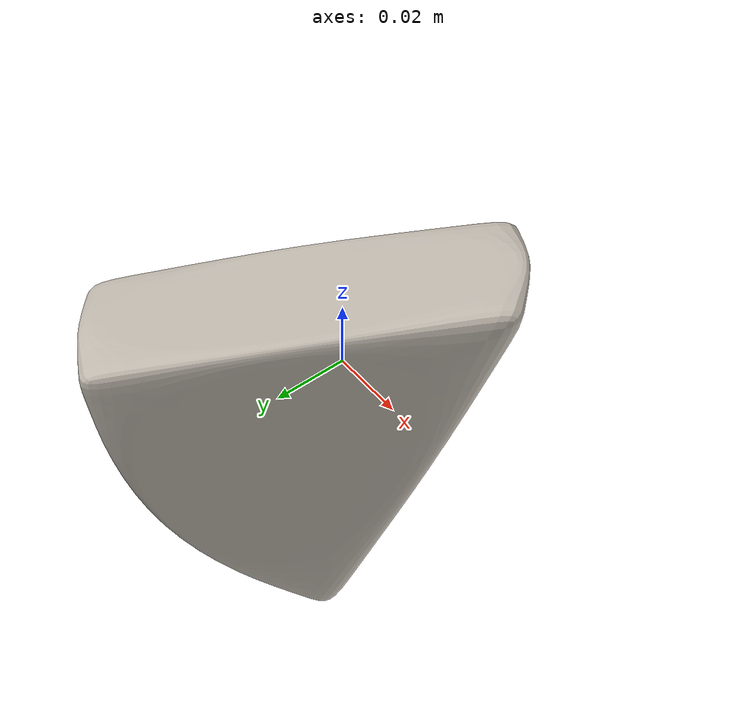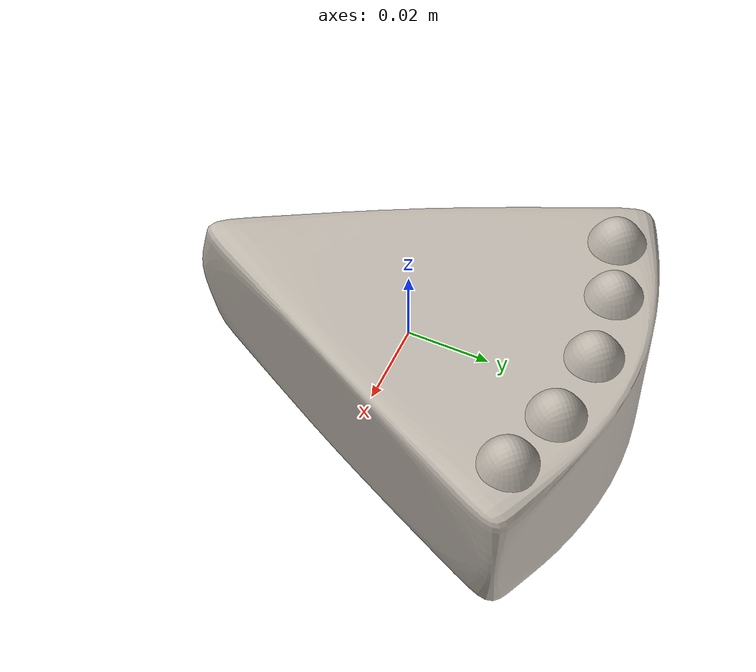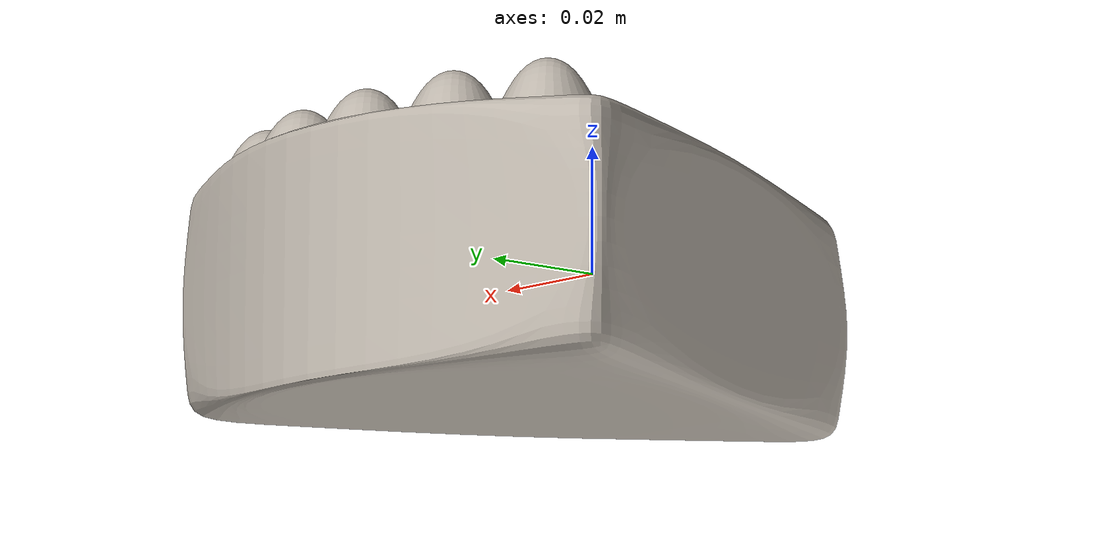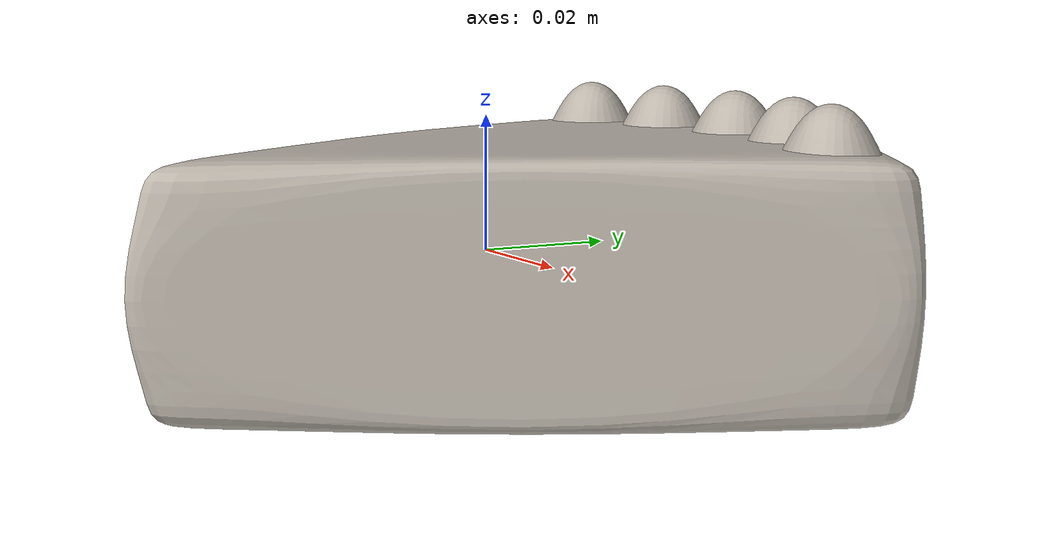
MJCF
<mujoco model="cake_8">
  <asset>
    <mesh file="visual/model_normalized_0.obj" name="model_normalized_0_vis" scale="0.11 0.11 0.11" refquat="-1.0 0.0 0.0 -2.220446049250313e-16"/>
    <mesh file="visual/model_normalized_1.obj" name="model_normalized_1_vis" scale="0.11 0.11 0.11" refquat="-1.0 0.0 0.0 -2.220446049250313e-16"/>
    <mesh file="collision/model_normalized_collision_22.obj" name="model_normalized_collision_22._coll" scale="0.11 0.11 0.11" refquat="-1.0 0.0 0.0 -2.220446049250313e-16"/>
    <mesh file="collision/model_normalized_collision_23.obj" name="model_normalized_collision_23._coll" scale="0.11 0.11 0.11" refquat="-1.0 0.0 0.0 -2.220446049250313e-16"/>
    <mesh file="collision/model_normalized_collision_21.obj" name="model_normalized_collision_21._coll" scale="0.11 0.11 0.11" refquat="-1.0 0.0 0.0 -2.220446049250313e-16"/>
    <mesh file="collision/model_normalized_collision_20.obj" name="model_normalized_collision_20._coll" scale="0.11 0.11 0.11" refquat="-1.0 0.0 0.0 -2.220446049250313e-16"/>
    <mesh file="collision/model_normalized_collision_24.obj" name="model_normalized_collision_24._coll" scale="0.11 0.11 0.11" refquat="-1.0 0.0 0.0 -2.220446049250313e-16"/>
    <mesh file="collision/model_normalized_collision_30.obj" name="model_normalized_collision_30._coll" scale="0.11 0.11 0.11" refquat="-1.0 0.0 0.0 -2.220446049250313e-16"/>
    <mesh file="collision/model_normalized_collision_18.obj" name="model_normalized_collision_18._coll" scale="0.11 0.11 0.11" refquat="-1.0 0.0 0.0 -2.220446049250313e-16"/>
    <mesh file="collision/model_normalized_collision_19.obj" name="model_normalized_collision_19._coll" scale="0.11 0.11 0.11" refquat="-1.0 0.0 0.0 -2.220446049250313e-16"/>
    <mesh file="collision/model_normalized_collision_31.obj" name="model_normalized_collision_31._coll" scale="0.11 0.11 0.11" refquat="-1.0 0.0 0.0 -2.220446049250313e-16"/>
    <mesh file="collision/model_normalized_collision_25.obj" name="model_normalized_collision_25._coll" scale="0.11 0.11 0.11" refquat="-1.0 0.0 0.0 -2.220446049250313e-16"/>
    <mesh file="collision/model_normalized_collision_27.obj" name="model_normalized_collision_27._coll" scale="0.11 0.11 0.11" refquat="-1.0 0.0 0.0 -2.220446049250313e-16"/>
    <mesh file="collision/model_normalized_collision_26.obj" name="model_normalized_collision_26._coll" scale="0.11 0.11 0.11" refquat="-1.0 0.0 0.0 -2.220446049250313e-16"/>
    <mesh file="collision/model_normalized_collision_9.obj" name="model_normalized_collision_9._coll" scale="0.11 0.11 0.11" refquat="-1.0 0.0 0.0 -2.220446049250313e-16"/>
    <mesh file="collision/model_normalized_collision_8.obj" name="model_normalized_collision_8._coll" scale="0.11 0.11 0.11" refquat="-1.0 0.0 0.0 -2.220446049250313e-16"/>
    <mesh file="collision/model_normalized_collision_6.obj" name="model_normalized_collision_6._coll" scale="0.11 0.11 0.11" refquat="-1.0 0.0 0.0 -2.220446049250313e-16"/>
    <mesh file="collision/model_normalized_collision_7.obj" name="model_normalized_collision_7._coll" scale="0.11 0.11 0.11" refquat="-1.0 0.0 0.0 -2.220446049250313e-16"/>
    <mesh file="collision/model_normalized_collision_5.obj" name="model_normalized_collision_5._coll" scale="0.11 0.11 0.11" refquat="-1.0 0.0 0.0 -2.220446049250313e-16"/>
    <mesh file="collision/model_normalized_collision_4.obj" name="model_normalized_collision_4._coll" scale="0.11 0.11 0.11" refquat="-1.0 0.0 0.0 -2.220446049250313e-16"/>
    <mesh file="collision/model_normalized_collision_0.obj" name="model_normalized_collision_0._coll" scale="0.11 0.11 0.11" refquat="-1.0 0.0 0.0 -2.220446049250313e-16"/>
    <mesh file="collision/model_normalized_collision_1.obj" name="model_normalized_collision_1._coll" scale="0.11 0.11 0.11" refquat="-1.0 0.0 0.0 -2.220446049250313e-16"/>
    <mesh file="collision/model_normalized_collision_3.obj" name="model_normalized_collision_3._coll" scale="0.11 0.11 0.11" refquat="-1.0 0.0 0.0 -2.220446049250313e-16"/>
    <mesh file="collision/model_normalized_collision_2.obj" name="model_normalized_collision_2._coll" scale="0.11 0.11 0.11" refquat="-1.0 0.0 0.0 -2.220446049250313e-16"/>
    <mesh file="collision/model_normalized_collision_17.obj" name="model_normalized_collision_17._coll" scale="0.11 0.11 0.11" refquat="-1.0 0.0 0.0 -2.220446049250313e-16"/>
    <mesh file="collision/model_normalized_collision_16.obj" name="model_normalized_collision_16._coll" scale="0.11 0.11 0.11" refquat="-1.0 0.0 0.0 -2.220446049250313e-16"/>
    <mesh file="collision/model_normalized_collision_28.obj" name="model_normalized_collision_28._coll" scale="0.11 0.11 0.11" refquat="-1.0 0.0 0.0 -2.220446049250313e-16"/>
    <mesh file="collision/model_normalized_collision_14.obj" name="model_normalized_collision_14._coll" scale="0.11 0.11 0.11" refquat="-1.0 0.0 0.0 -2.220446049250313e-16"/>
    <mesh file="collision/model_normalized_collision_15.obj" name="model_normalized_collision_15._coll" scale="0.11 0.11 0.11" refquat="-1.0 0.0 0.0 -2.220446049250313e-16"/>
    <mesh file="collision/model_normalized_collision_29.obj" name="model_normalized_collision_29._coll" scale="0.11 0.11 0.11" refquat="-1.0 0.0 0.0 -2.220446049250313e-16"/>
    <mesh file="collision/model_normalized_collision_11.obj" name="model_normalized_collision_11._coll" scale="0.11 0.11 0.11" refquat="-1.0 0.0 0.0 -2.220446049250313e-16"/>
    <mesh file="collision/model_normalized_collision_10.obj" name="model_normalized_collision_10._coll" scale="0.11 0.11 0.11" refquat="-1.0 0.0 0.0 -2.220446049250313e-16"/>
    <mesh file="collision/model_normalized_collision_12.obj" name="model_normalized_collision_12._coll" scale="0.11 0.11 0.11" refquat="-1.0 0.0 0.0 -2.220446049250313e-16"/>
    <mesh file="collision/model_normalized_collision_13.obj" name="model_normalized_collision_13._coll" scale="0.11 0.11 0.11" refquat="-1.0 0.0 0.0 -2.220446049250313e-16"/>
    <texture type="2d" name="image0" file="visual/image0.png"/>
    <material name="Cream.003" texture="image0" specular="0.5" shininess="0.050000011999999996"/>
    <material name="Slice" texture="image0" specular="0.5" shininess="0.038399988999999995"/>
  </asset>
  <worldbody>
  <body>
      <body name="object">
        <geom solimp="0.998 0.998 0.001" solref="0.001 1" density="100" friction="0.95 0.3 0.1" type="mesh" mesh="model_normalized_0_vis" conaffinity="0" contype="0" group="1" material="Cream.003"/>
        <geom solimp="0.998 0.998 0.001" solref="0.001 1" density="100" friction="0.95 0.3 0.1" type="mesh" mesh="model_normalized_1_vis" conaffinity="0" contype="0" group="1" material="Slice"/>
        <geom solimp="0.998 0.998 0.001" solref="0.001 1" density="100" friction="0.95 0.3 0.1" type="mesh" mesh="model_normalized_collision_22._coll" group="0" rgba="0.8 0.8 0.8 0.0"/>
        <geom solimp="0.998 0.998 0.001" solref="0.001 1" density="100" friction="0.95 0.3 0.1" type="mesh" mesh="model_normalized_collision_23._coll" group="0" rgba="0.8 0.8 0.8 0.0"/>
        <geom solimp="0.998 0.998 0.001" solref="0.001 1" density="100" friction="0.95 0.3 0.1" type="mesh" mesh="model_normalized_collision_21._coll" group="0" rgba="0.8 0.8 0.8 0.0"/>
        <geom solimp="0.998 0.998 0.001" solref="0.001 1" density="100" friction="0.95 0.3 0.1" type="mesh" mesh="model_normalized_collision_20._coll" group="0" rgba="0.8 0.8 0.8 0.0"/>
        <geom solimp="0.998 0.998 0.001" solref="0.001 1" density="100" friction="0.95 0.3 0.1" type="mesh" mesh="model_normalized_collision_24._coll" group="0" rgba="0.8 0.8 0.8 0.0"/>
        <geom solimp="0.998 0.998 0.001" solref="0.001 1" density="100" friction="0.95 0.3 0.1" type="mesh" mesh="model_normalized_collision_30._coll" group="0" rgba="0.8 0.8 0.8 0.0"/>
        <geom solimp="0.998 0.998 0.001" solref="0.001 1" density="100" friction="0.95 0.3 0.1" type="mesh" mesh="model_normalized_collision_18._coll" group="0" rgba="0.8 0.8 0.8 0.0"/>
        <geom solimp="0.998 0.998 0.001" solref="0.001 1" density="100" friction="0.95 0.3 0.1" type="mesh" mesh="model_normalized_collision_19._coll" group="0" rgba="0.8 0.8 0.8 0.0"/>
        <geom solimp="0.998 0.998 0.001" solref="0.001 1" density="100" friction="0.95 0.3 0.1" type="mesh" mesh="model_normalized_collision_31._coll" group="0" rgba="0.8 0.8 0.8 0.0"/>
        <geom solimp="0.998 0.998 0.001" solref="0.001 1" density="100" friction="0.95 0.3 0.1" type="mesh" mesh="model_normalized_collision_25._coll" group="0" rgba="0.8 0.8 0.8 0.0"/>
        <geom solimp="0.998 0.998 0.001" solref="0.001 1" density="100" friction="0.95 0.3 0.1" type="mesh" mesh="model_normalized_collision_27._coll" group="0" rgba="0.8 0.8 0.8 0.0"/>
        <geom solimp="0.998 0.998 0.001" solref="0.001 1" density="100" friction="0.95 0.3 0.1" type="mesh" mesh="model_normalized_collision_26._coll" group="0" rgba="0.8 0.8 0.8 0.0"/>
        <geom solimp="0.998 0.998 0.001" solref="0.001 1" density="100" friction="0.95 0.3 0.1" type="mesh" mesh="model_normalized_collision_9._coll" group="0" rgba="0.8 0.8 0.8 0.0"/>
        <geom solimp="0.998 0.998 0.001" solref="0.001 1" density="100" friction="0.95 0.3 0.1" type="mesh" mesh="model_normalized_collision_8._coll" group="0" rgba="0.8 0.8 0.8 0.0"/>
        <geom solimp="0.998 0.998 0.001" solref="0.001 1" density="100" friction="0.95 0.3 0.1" type="mesh" mesh="model_normalized_collision_6._coll" group="0" rgba="0.8 0.8 0.8 0.0"/>
        <geom solimp="0.998 0.998 0.001" solref="0.001 1" density="100" friction="0.95 0.3 0.1" type="mesh" mesh="model_normalized_collision_7._coll" group="0" rgba="0.8 0.8 0.8 0.0"/>
        <geom solimp="0.998 0.998 0.001" solref="0.001 1" density="100" friction="0.95 0.3 0.1" type="mesh" mesh="model_normalized_collision_5._coll" group="0" rgba="0.8 0.8 0.8 0.0"/>
        <geom solimp="0.998 0.998 0.001" solref="0.001 1" density="100" friction="0.95 0.3 0.1" type="mesh" mesh="model_normalized_collision_4._coll" group="0" rgba="0.8 0.8 0.8 0.0"/>
        <geom solimp="0.998 0.998 0.001" solref="0.001 1" density="100" friction="0.95 0.3 0.1" type="mesh" mesh="model_normalized_collision_0._coll" group="0" rgba="0.8 0.8 0.8 0.0"/>
        <geom solimp="0.998 0.998 0.001" solref="0.001 1" density="100" friction="0.95 0.3 0.1" type="mesh" mesh="model_normalized_collision_1._coll" group="0" rgba="0.8 0.8 0.8 0.0"/>
        <geom solimp="0.998 0.998 0.001" solref="0.001 1" density="100" friction="0.95 0.3 0.1" type="mesh" mesh="model_normalized_collision_3._coll" group="0" rgba="0.8 0.8 0.8 0.0"/>
        <geom solimp="0.998 0.998 0.001" solref="0.001 1" density="100" friction="0.95 0.3 0.1" type="mesh" mesh="model_normalized_collision_2._coll" group="0" rgba="0.8 0.8 0.8 0.0"/>
        <geom solimp="0.998 0.998 0.001" solref="0.001 1" density="100" friction="0.95 0.3 0.1" type="mesh" mesh="model_normalized_collision_17._coll" group="0" rgba="0.8 0.8 0.8 0.0"/>
        <geom solimp="0.998 0.998 0.001" solref="0.001 1" density="100" friction="0.95 0.3 0.1" type="mesh" mesh="model_normalized_collision_16._coll" group="0" rgba="0.8 0.8 0.8 0.0"/>
        <geom solimp="0.998 0.998 0.001" solref="0.001 1" density="100" friction="0.95 0.3 0.1" type="mesh" mesh="model_normalized_collision_28._coll" group="0" rgba="0.8 0.8 0.8 0.0"/>
        <geom solimp="0.998 0.998 0.001" solref="0.001 1" density="100" friction="0.95 0.3 0.1" type="mesh" mesh="model_normalized_collision_14._coll" group="0" rgba="0.8 0.8 0.8 0.0"/>
        <geom solimp="0.998 0.998 0.001" solref="0.001 1" density="100" friction="0.95 0.3 0.1" type="mesh" mesh="model_normalized_collision_15._coll" group="0" rgba="0.8 0.8 0.8 0.0"/>
        <geom solimp="0.998 0.998 0.001" solref="0.001 1" density="100" friction="0.95 0.3 0.1" type="mesh" mesh="model_normalized_collision_29._coll" group="0" rgba="0.8 0.8 0.8 0.0"/>
        <geom solimp="0.998 0.998 0.001" solref="0.001 1" density="100" friction="0.95 0.3 0.1" type="mesh" mesh="model_normalized_collision_11._coll" group="0" rgba="0.8 0.8 0.8 0.0"/>
        <geom solimp="0.998 0.998 0.001" solref="0.001 1" density="100" friction="0.95 0.3 0.1" type="mesh" mesh="model_normalized_collision_10._coll" group="0" rgba="0.8 0.8 0.8 0.0"/>
        <geom solimp="0.998 0.998 0.001" solref="0.001 1" density="100" friction="0.95 0.3 0.1" type="mesh" mesh="model_normalized_collision_12._coll" group="0" rgba="0.8 0.8 0.8 0.0"/>
        <geom solimp="0.998 0.998 0.001" solref="0.001 1" density="100" friction="0.95 0.3 0.1" type="mesh" mesh="model_normalized_collision_13._coll" group="0" rgba="0.8 0.8 0.8 0.0"/>
      </body>
      <site rgba="0 0 0 0" size="0.005" pos="-0.00010137899999999918 0.00042036060000000025 -0.024475085999999986" name="bottom_site"/>
      <site rgba="0 0 0 0" size="0.005" pos="-0.00010137899999999918 0.00042036060000000025 0.023783019599999993" name="top_site"/>
      <site rgba="0 0 0 0" size="0.005" pos="0.05157931559999998 0.05995044239999998 -0.00034603319999999924" name="horizontal_radius_site"/>
    </body>
    </worldbody>
</mujoco>
